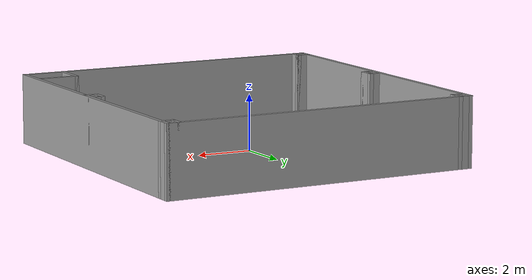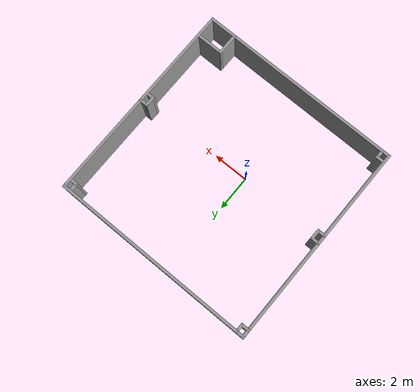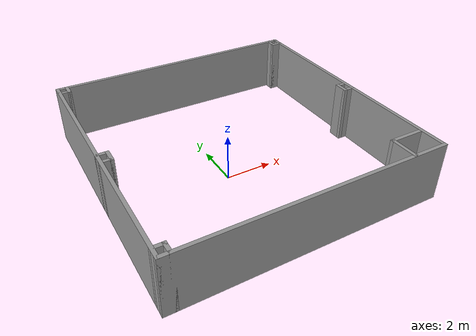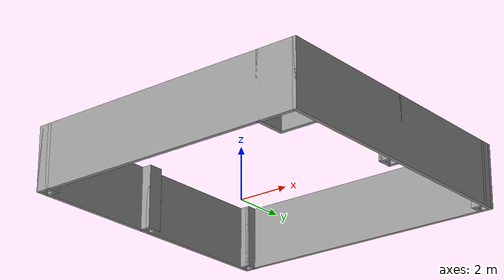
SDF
<?xml version='1.0'?>
<sdf version='1.6'>
  <model name='B205_wall_only'>
    <pose frame=''>0.68 0.675 0 0 -0 0</pose>
    <link name='Wall_27'>
      <collision name='Wall_27_Collision'>
        <geometry>
          <box>
            <size>11.51 0.15 2.5</size>
          </box>
        </geometry>
        <pose frame=''>0 0 1.25 0 -0 0</pose>
      </collision>
      <visual name='Wall_27_Visual'>
        <pose frame=''>0 0 1.25 0 -0 0</pose>
        <geometry>
          <box>
            <size>11.51 0.15 2.5</size>
          </box>
        </geometry>
        <material>
          <script>
            <uri>file://media/materials/scripts/gazebo.material</uri>
            <name>Gazebo/Grey</name>
          </script>
          <ambient>1 1 1 1</ambient>
        </material>
      </visual>
      <pose frame=''>0 -5.675 0 0 -0 0</pose>
    </link>
    <link name='Wall_29'>
      <collision name='Wall_29_Collision'>
        <geometry>
          <box>
            <size>11.5 0.15 2.5</size>
          </box>
        </geometry>
        <pose frame=''>0 0 1.25 0 -0 0</pose>
      </collision>
      <visual name='Wall_29_Visual'>
        <pose frame=''>0 0 1.25 0 -0 0</pose>
        <geometry>
          <box>
            <size>11.5 0.15 2.5</size>
          </box>
        </geometry>
        <material>
          <script>
            <uri>file://media/materials/scripts/gazebo.material</uri>
            <name>Gazebo/Grey</name>
          </script>
          <ambient>1 1 1 1</ambient>
        </material>
      </visual>
      <pose frame=''>-5.68 0 0 0 -0 1.5708</pose>
    </link>
    <link name='Wall_31'>
      <collision name='Wall_31_Collision'>
        <geometry>
          <box>
            <size>11.5 0.15 2.5</size>
          </box>
        </geometry>
        <pose frame=''>0 0 1.25 0 -0 0</pose>
      </collision>
      <visual name='Wall_31_Visual'>
        <pose frame=''>0 0 1.25 0 -0 0</pose>
        <geometry>
          <box>
            <size>11.5 0.15 2.5</size>
          </box>
        </geometry>
        <material>
          <script>
            <uri>file://media/materials/scripts/gazebo.material</uri>
            <name>Gazebo/Grey</name>
          </script>
          <ambient>1 1 1 1</ambient>
        </material>
      </visual>
      <pose frame=''>5.68 0 0 0 -0 1.5708</pose>
    </link>
    <link name='Wall_33'>
      <collision name='Wall_33_Collision'>
        <geometry>
          <box>
            <size>11.51 0.15 2.5</size>
          </box>
        </geometry>
        <pose frame=''>0 0 1.25 0 -0 0</pose>
      </collision>
      <visual name='Wall_33_Visual'>
        <pose frame=''>0 0 1.25 0 -0 0</pose>
        <geometry>
          <box>
            <size>11.51 0.15 2.5</size>
          </box>
        </geometry>
        <material>
          <script>
            <uri>file://media/materials/scripts/gazebo.material</uri>
            <name>Gazebo/Grey</name>
          </script>
          <ambient>1 1 1 1</ambient>
        </material>
      </visual>
      <pose frame=''>0 5.675 0 0 -0 0</pose>
    </link>
    <link name='Wall_39'>
      <collision name='Wall_39_Collision'>
        <geometry>
          <box>
            <size>0.555 0.15 2.5</size>
          </box>
        </geometry>
        <pose frame=''>0 0 1.25 0 -0 0</pose>
      </collision>
      <visual name='Wall_39_Visual'>
        <pose frame=''>0 0 1.25 0 -0 0</pose>
        <geometry>
          <box>
            <size>0.555 0.15 2.5</size>
          </box>
        </geometry>
        <material>
          <script>
            <uri>file://media/materials/scripts/gazebo.material</uri>
            <name>Gazebo/Grey</name>
          </script>
          <ambient>1 1 1 1</ambient>
        </material>
      </visual>
      <pose frame=''>-5.275 -5.4725 0 0 -0 1.5708</pose>
    </link>
    <link name='Wall_41'>
      <collision name='Wall_41_Collision'>
        <geometry>
          <box>
            <size>0.555 0.15 2.5</size>
          </box>
        </geometry>
        <pose frame=''>0 0 1.25 0 -0 0</pose>
      </collision>
      <visual name='Wall_41_Visual'>
        <pose frame=''>0 0 1.25 0 -0 0</pose>
        <geometry>
          <box>
            <size>0.555 0.15 2.5</size>
          </box>
        </geometry>
        <material>
          <script>
            <uri>file://media/materials/scripts/gazebo.material</uri>
            <name>Gazebo/Grey</name>
          </script>
          <ambient>1 1 1 1</ambient>
        </material>
      </visual>
      <pose frame=''>-5.4775 -5.27 0 0 -0 3.14159</pose>
    </link>
    <link name='Wall_43'>
      <collision name='Wall_43_Collision'>
        <geometry>
          <box>
            <size>0.55 0.15 2.5</size>
          </box>
        </geometry>
        <pose frame=''>0 0 1.25 0 -0 0</pose>
      </collision>
      <visual name='Wall_43_Visual'>
        <pose frame=''>0 0 1.25 0 -0 0</pose>
        <geometry>
          <box>
            <size>0.55 0.15 2.5</size>
          </box>
        </geometry>
        <material>
          <script>
            <uri>file://media/materials/scripts/gazebo.material</uri>
            <name>Gazebo/Grey</name>
          </script>
          <ambient>1 1 1 1</ambient>
        </material>
      </visual>
      <pose frame=''>-5.48 -0.525 0 0 -0 0</pose>
    </link>
    <link name='Wall_45'>
      <collision name='Wall_45_Collision'>
        <geometry>
          <box>
            <size>0.62 0.15 2.5</size>
          </box>
        </geometry>
        <pose frame=''>0 0 1.25 0 -0 0</pose>
      </collision>
      <visual name='Wall_45_Visual'>
        <pose frame=''>0 0 1.25 0 -0 0</pose>
        <geometry>
          <box>
            <size>0.62 0.15 2.5</size>
          </box>
        </geometry>
        <material>
          <script>
            <uri>file://media/materials/scripts/gazebo.material</uri>
            <name>Gazebo/Grey</name>
          </script>
          <ambient>1 1 1 1</ambient>
        </material>
      </visual>
      <pose frame=''>-5.28 -0.29 0 0 -0 1.5708</pose>
    </link>
    <link name='Wall_47'>
      <collision name='Wall_47_Collision'>
        <geometry>
          <box>
            <size>0.55 0.15 2.5</size>
          </box>
        </geometry>
        <pose frame=''>0 0 1.25 0 -0 0</pose>
      </collision>
      <visual name='Wall_47_Visual'>
        <pose frame=''>0 0 1.25 0 -0 0</pose>
        <geometry>
          <box>
            <size>0.55 0.15 2.5</size>
          </box>
        </geometry>
        <material>
          <script>
            <uri>file://media/materials/scripts/gazebo.material</uri>
            <name>Gazebo/Grey</name>
          </script>
          <ambient>1 1 1 1</ambient>
        </material>
      </visual>
      <pose frame=''>-5.48 -0.055 0 0 -0 3.14159</pose>
    </link>
    <link name='Wall_49'>
      <collision name='Wall_49_Collision'>
        <geometry>
          <box>
            <size>0.55 0.15 2.5</size>
          </box>
        </geometry>
        <pose frame=''>0 0 1.25 0 -0 0</pose>
      </collision>
      <visual name='Wall_49_Visual'>
        <pose frame=''>0 0 1.25 0 -0 0</pose>
        <geometry>
          <box>
            <size>0.55 0.15 2.5</size>
          </box>
        </geometry>
        <material>
          <script>
            <uri>file://media/materials/scripts/gazebo.material</uri>
            <name>Gazebo/Grey</name>
          </script>
          <ambient>1 1 1 1</ambient>
        </material>
      </visual>
      <pose frame=''>-5.48 5.275 0 0 -0 0</pose>
    </link>
    <link name='Wall_51'>
      <collision name='Wall_51_Collision'>
        <geometry>
          <box>
            <size>0.55 0.15 2.5</size>
          </box>
        </geometry>
        <pose frame=''>0 0 1.25 0 -0 0</pose>
      </collision>
      <visual name='Wall_51_Visual'>
        <pose frame=''>0 0 1.25 0 -0 0</pose>
        <geometry>
          <box>
            <size>0.55 0.15 2.5</size>
          </box>
        </geometry>
        <material>
          <script>
            <uri>file://media/materials/scripts/gazebo.material</uri>
            <name>Gazebo/Grey</name>
          </script>
          <ambient>1 1 1 1</ambient>
        </material>
      </visual>
      <pose frame=''>-5.28 5.475 0 0 -0 1.5708</pose>
    </link>
    <link name='Wall_53'>
      <collision name='Wall_53_Collision'>
        <geometry>
          <box>
            <size>1.465 0.15 2.5</size>
          </box>
        </geometry>
        <pose frame=''>0 0 1.25 0 -0 0</pose>
      </collision>
      <visual name='Wall_53_Visual'>
        <pose frame=''>0 0 1.25 0 -0 0</pose>
        <geometry>
          <box>
            <size>1.465 0.15 2.5</size>
          </box>
        </geometry>
        <material>
          <script>
            <uri>file://media/materials/scripts/gazebo.material</uri>
            <name>Gazebo/Grey</name>
          </script>
          <ambient>1 1 1 1</ambient>
        </material>
      </visual>
      <pose frame=''>4.8725 -4.55 0 0 -0 0</pose>
    </link>
    <link name='Wall_55'>
      <collision name='Wall_55_Collision'>
        <geometry>
          <box>
            <size>1.275 0.15 2.5</size>
          </box>
        </geometry>
        <pose frame=''>0 0 1.25 0 -0 0</pose>
      </collision>
      <visual name='Wall_55_Visual'>
        <pose frame=''>0 0 1.25 0 -0 0</pose>
        <geometry>
          <box>
            <size>1.275 0.15 2.5</size>
          </box>
        </geometry>
        <material>
          <script>
            <uri>file://media/materials/scripts/gazebo.material</uri>
            <name>Gazebo/Grey</name>
          </script>
          <ambient>1 1 1 1</ambient>
        </material>
      </visual>
      <pose frame=''>4.215 -5.1125 0 0 0 -1.5708</pose>
    </link>
    <link name='Wall_57'>
      <collision name='Wall_57_Collision'>
        <geometry>
          <box>
            <size>0.55 0.15 2.5</size>
          </box>
        </geometry>
        <pose frame=''>0 0 1.25 0 -0 0</pose>
      </collision>
      <visual name='Wall_57_Visual'>
        <pose frame=''>0 0 1.25 0 -0 0</pose>
        <geometry>
          <box>
            <size>0.55 0.15 2.5</size>
          </box>
        </geometry>
        <material>
          <script>
            <uri>file://media/materials/scripts/gazebo.material</uri>
            <name>Gazebo/Grey</name>
          </script>
          <ambient>1 1 1 1</ambient>
        </material>
      </visual>
      <pose frame=''>5.48 -0.515 0 0 -0 0</pose>
    </link>
    <link name='Wall_59'>
      <collision name='Wall_59_Collision'>
        <geometry>
          <box>
            <size>0.62 0.15 2.5</size>
          </box>
        </geometry>
        <pose frame=''>0 0 1.25 0 -0 0</pose>
      </collision>
      <visual name='Wall_59_Visual'>
        <pose frame=''>0 0 1.25 0 -0 0</pose>
        <geometry>
          <box>
            <size>0.62 0.15 2.5</size>
          </box>
        </geometry>
        <material>
          <script>
            <uri>file://media/materials/scripts/gazebo.material</uri>
            <name>Gazebo/Grey</name>
          </script>
          <ambient>1 1 1 1</ambient>
        </material>
      </visual>
      <pose frame=''>5.28 -0.28 0 0 -0 1.5708</pose>
    </link>
    <link name='Wall_61'>
      <collision name='Wall_61_Collision'>
        <geometry>
          <box>
            <size>0.55 0.15 2.5</size>
          </box>
        </geometry>
        <pose frame=''>0 0 1.25 0 -0 0</pose>
      </collision>
      <visual name='Wall_61_Visual'>
        <pose frame=''>0 0 1.25 0 -0 0</pose>
        <geometry>
          <box>
            <size>0.55 0.15 2.5</size>
          </box>
        </geometry>
        <material>
          <script>
            <uri>file://media/materials/scripts/gazebo.material</uri>
            <name>Gazebo/Grey</name>
          </script>
          <ambient>1 1 1 1</ambient>
        </material>
      </visual>
      <pose frame=''>5.48 -0.045 0 0 -0 0</pose>
    </link>
    <link name='Wall_63'>
      <collision name='Wall_63_Collision'>
        <geometry>
          <box>
            <size>0.55 0.15 2.5</size>
          </box>
        </geometry>
        <pose frame=''>0 0 1.25 0 -0 0</pose>
      </collision>
      <visual name='Wall_63_Visual'>
        <pose frame=''>0 0 1.25 0 -0 0</pose>
        <geometry>
          <box>
            <size>0.55 0.15 2.5</size>
          </box>
        </geometry>
        <material>
          <script>
            <uri>file://media/materials/scripts/gazebo.material</uri>
            <name>Gazebo/Grey</name>
          </script>
          <ambient>1 1 1 1</ambient>
        </material>
      </visual>
      <pose frame=''>5.48 5.23 0 0 -0 0</pose>
    </link>
    <link name='Wall_66'>
      <collision name='Wall_66_Collision'>
        <geometry>
          <box>
            <size>0.595 0.15 2.5</size>
          </box>
        </geometry>
        <pose frame=''>0 0 1.25 0 -0 0</pose>
      </collision>
      <visual name='Wall_66_Visual'>
        <pose frame=''>0 0 1.25 0 -0 0</pose>
        <geometry>
          <box>
            <size>0.595 0.15 2.5</size>
          </box>
        </geometry>
        <material>
          <script>
            <uri>file://media/materials/scripts/gazebo.material</uri>
            <name>Gazebo/Grey</name>
          </script>
          <ambient>1 1 1 1</ambient>
        </material>
      </visual>
      <pose frame=''>5.28 5.4525 0 0 -0 1.5708</pose>
    </link>
    <static>1</static>
  </model>
</sdf>
